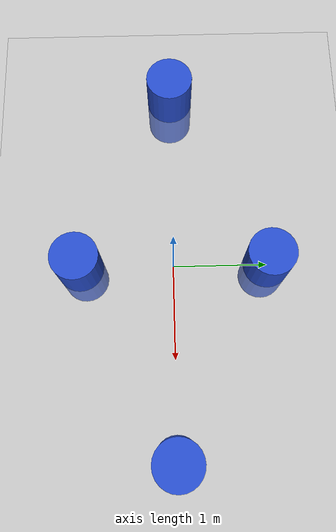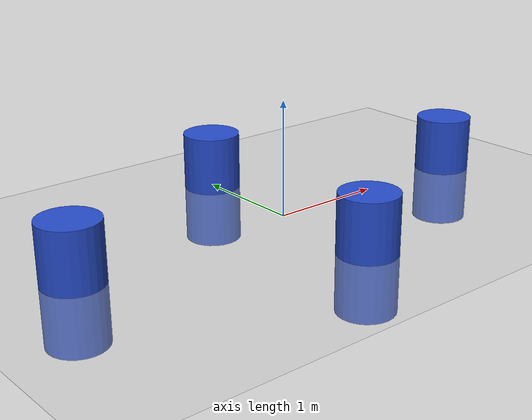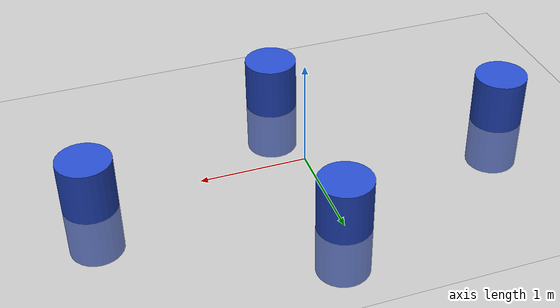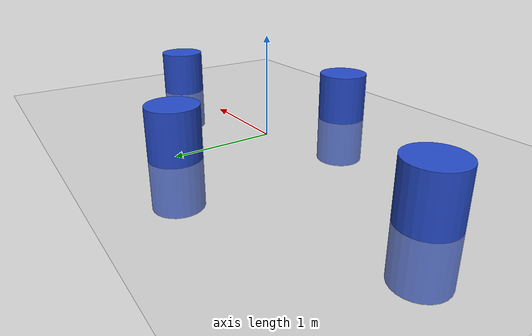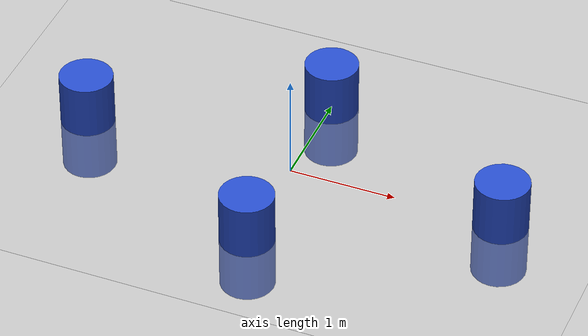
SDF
<?xml version="1.0"?>
<sdf version="1.5">
    <world name="default">

        <!-- A global light source -->
        <include>
            <uri>model://sun</uri>
        </include>

        <!-- Ground -->
        <include>
            <uri>model://ground_plane</uri>
        </include>

        <!-- Boundary Walls -->

        <include>
            <uri>model://awesome_cylinder</uri>
            <name>cylinder_1</name>
            <pose>2 0 0 0 0 0</pose>
        </include>

        <include>
            <uri>model://awesome_cylinder</uri>
            <name>cylinder_2</name>
            <pose>-2 0 0 0 0 0</pose>
        </include>

        <include>
            <uri>model://awesome_cylinder</uri>
            <name>cylinder_3</name>
            <pose>0 1 0 0 0 0</pose>
        </include>

        <include>
            <uri>model://awesome_cylinder</uri>
            <name>cylinder_4</name>
            <pose>0 -1 0 0 0 0</pose>
        </include>

        <!-- Gazebo required specifications -->
        <physics name="default_physics" default="0" type="ode">
            <gravity>0 0 -9.8066</gravity>
            <ode>
                <solver>
                    <type>quick</type>
                    <iters>10</iters>
                    <sor>1.3</sor>
                    <use_dynamic_moi_rescaling>0</use_dynamic_moi_rescaling>
                </solver>
                <constraints>
                    <cfm>0</cfm>
                    <erp>0.2</erp>
                    <contact_max_correcting_vel>100</contact_max_correcting_vel>
                    <contact_surface_layer>0.001</contact_surface_layer>
                </constraints>
            </ode>
            <max_step_size>0.004</max_step_size>
            <real_time_factor>1</real_time_factor>
            <real_time_update_rate>250</real_time_update_rate>
            <magnetic_field>6.0e-6 2.3e-5 -4.2e-5</magnetic_field>
        </physics>
    </world>
</sdf>

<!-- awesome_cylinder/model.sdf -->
<sdf version='1.6'>
<model name='awesome_cylinder'>
    <pose>0 0 0 0 -0 0</pose>
    <link name='link'>
        <inertial>
            <mass>1</mass>
            <inertia>
                <ixx>0.145833</ixx>
                <ixy>0</ixy>
                <ixz>0</ixz>
                <iyy>0.145833</iyy>
                <iyz>0</iyz>
                <izz>0.125</izz>
            </inertia>
            <pose>0 0 0 0 -0 0</pose>
        </inertial>
        <collision name='collision'>
            <geometry>
                <cylinder>
                    <radius>0.25</radius>
                    <length>1</length>
                </cylinder>
            </geometry>
            <max_contacts>10</max_contacts>
            <surface>
                <contact>
                    <ode/>
                </contact>
                <bounce/>
                <friction>
                    <torsional>
                        <ode/>
                    </torsional>
                    <ode/>
                </friction>
            </surface>
        </collision>
        <visual name='visual'>
            <geometry>
                <cylinder>
                    <radius>0.25</radius>
                    <length>1</length>
                </cylinder>
            </geometry>
            <material>
                <script>
                    <name>Gazebo/Blue</name>
                    <uri>file://media/materials/scripts/gazebo.material</uri>
                </script>
            </material>
        </visual>
        <self_collide>0</self_collide>
        <enable_wind>0</enable_wind>
        <kinematic>0</kinematic>
    </link>
</model>
</sdf>
